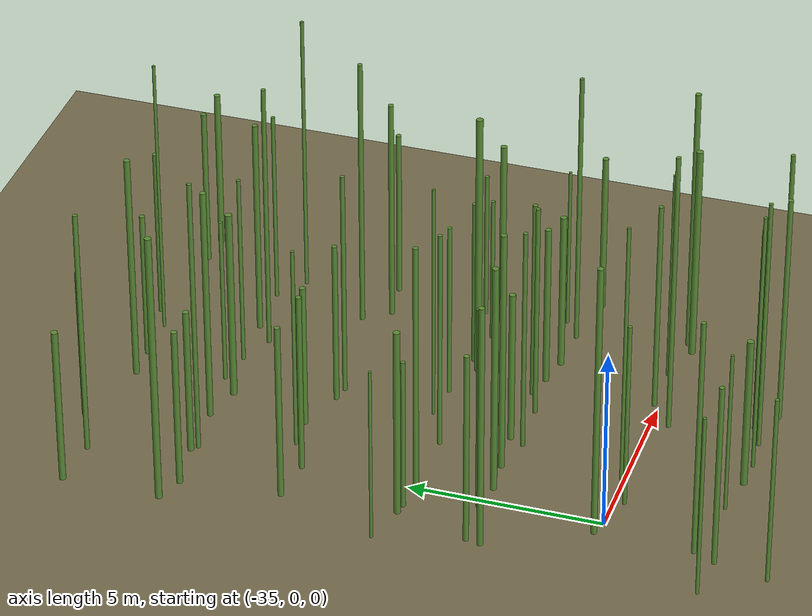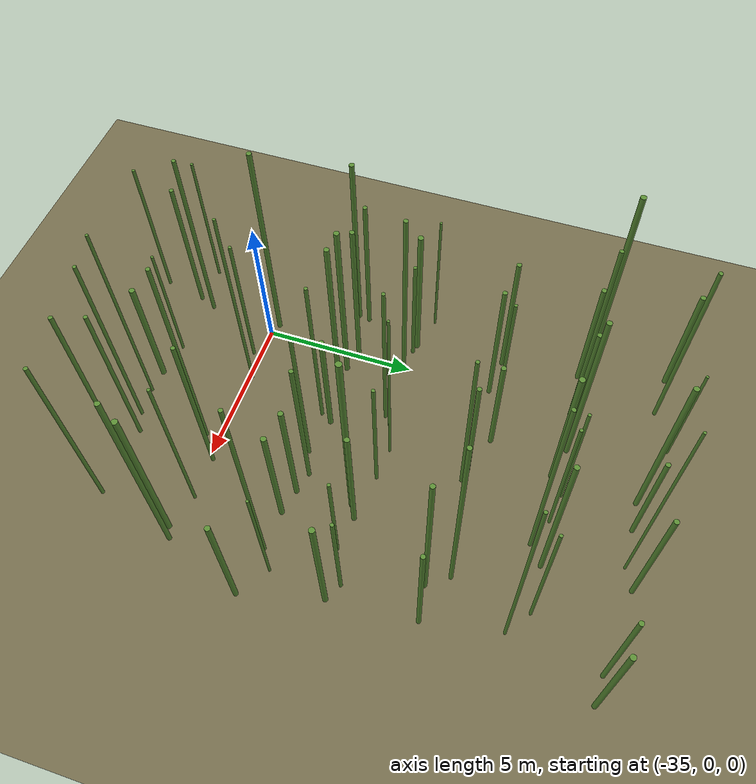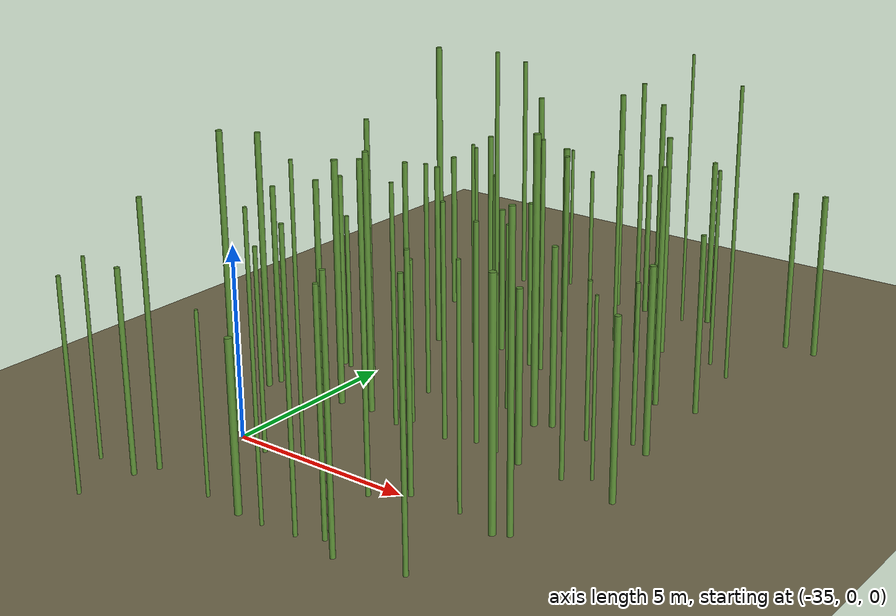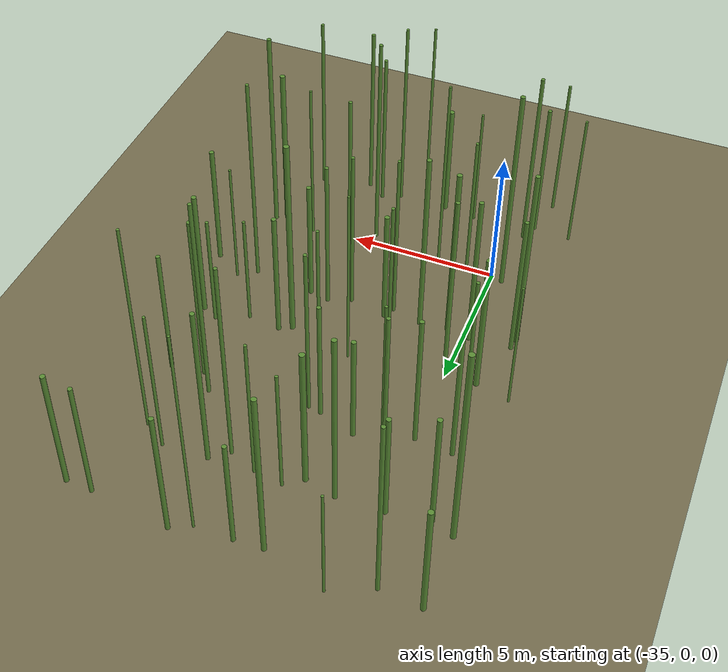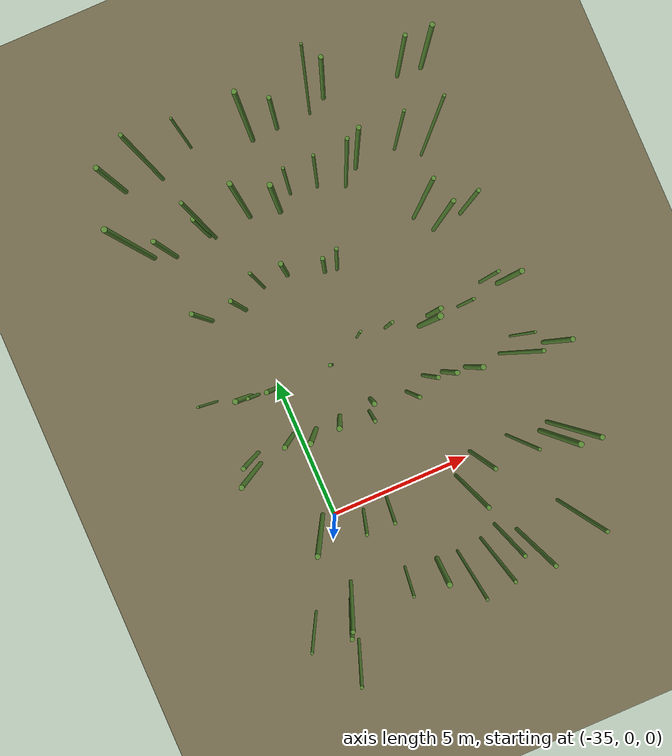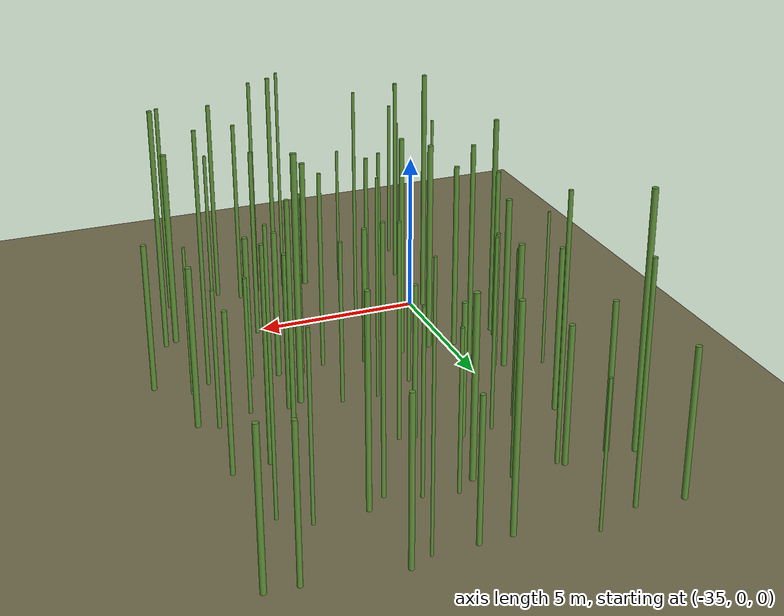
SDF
<sdf version="1.9">
 <world name="bamboo_field">
  <model name="ground_plane">
   <static>true</static>
   <link name="link">
    <collision name="collision">
     <geometry><plane><normal>0 0 1</normal><size>80.0 80.0</size></plane></geometry>
    </collision>
    <visual name="visual">
     <geometry><plane><normal>0 0 1</normal><size>80.0 80.0</size></plane></geometry>
     <material><diffuse>0.45 0.42 0.30 1</diffuse></material>
    </visual>
   </link>
  </model>
  <model name="bamboo_883">
   <static>true</static>
   <pose>-35.95236597711646 -4.328427685578118 2.654591894660126 0 0 0</pose>
   <link name="link">
    <collision name="collision">
     <geometry>
      <cylinder><radius>0.0523327088534204</radius><length>5.309183789320252</length></cylinder>
     </geometry>
    </collision>
    <visual name="visual">
     <geometry>
      <cylinder><radius>0.0523327088534204</radius><length>5.309183789320252</length></cylinder>
     </geometry>
     <material><diffuse>0.35 0.55 0.20 1</diffuse><specular>0.1 0.1 0.1 1</specular></material>
    </visual>
   </link>
  </model>
  <model name="bamboo_946">
   <static>true</static>
   <pose>-36.929727344100755 -2.853111574480171 2.567222885145929 0 0 0</pose>
   <link name="link">
    <collision name="collision">
     <geometry>
      <cylinder><radius>0.04578613034813892</radius><length>5.134445770291858</length></cylinder>
     </geometry>
    </collision>
    <visual name="visual">
     <geometry>
      <cylinder><radius>0.04578613034813892</radius><length>5.134445770291858</length></cylinder>
     </geometry>
     <material><diffuse>0.35 0.55 0.20 1</diffuse><specular>0.1 0.1 0.1 1</specular></material>
    </visual>
   </link>
  </model>
  <model name="bamboo_947">
   <static>true</static>
   <pose>-35.66077241423719 -2.9393669220687624 2.5811786500358926 0 0 0</pose>
   <link name="link">
    <collision name="collision">
     <geometry>
      <cylinder><radius>0.06769579455527745</radius><length>5.162357300071785</length></cylinder>
     </geometry>
    </collision>
    <visual name="visual">
     <geometry>
      <cylinder><radius>0.06769579455527745</radius><length>5.162357300071785</length></cylinder>
     </geometry>
     <material><diffuse>0.35 0.55 0.20 1</diffuse><specular>0.1 0.1 0.1 1</specular></material>
    </visual>
   </link>
  </model>
  <model name="bamboo_948">
   <static>true</static>
   <pose>-35.406176619952255 -2.372410084055757 3.358262216559669 0 0 0</pose>
   <link name="link">
    <collision name="collision">
     <geometry>
      <cylinder><radius>0.06378383984382524</radius><length>6.716524433119338</length></cylinder>
     </geometry>
    </collision>
    <visual name="visual">
     <geometry>
      <cylinder><radius>0.06378383984382524</radius><length>6.716524433119338</length></cylinder>
     </geometry>
     <material><diffuse>0.35 0.55 0.20 1</diffuse><specular>0.1 0.1 0.1 1</specular></material>
    </visual>
   </link>
  </model>
  <model name="bamboo_949">
   <static>true</static>
   <pose>-33.47936502725804 -2.6581263494034437 2.2867351233186044 0 0 0</pose>
   <link name="link">
    <collision name="collision">
     <geometry>
      <cylinder><radius>0.04425029550463626</radius><length>4.573470246637209</length></cylinder>
     </geometry>
    </collision>
    <visual name="visual">
     <geometry>
      <cylinder><radius>0.04425029550463626</radius><length>4.573470246637209</length></cylinder>
     </geometry>
     <material><diffuse>0.35 0.55 0.20 1</diffuse><specular>0.1 0.1 0.1 1</specular></material>
    </visual>
   </link>
  </model>
  <model name="bamboo_950">
   <static>true</static>
   <pose>-32.336467920182834 -2.8344742595998906 2.129420822318047 0 0 0</pose>
   <link name="link">
    <collision name="collision">
     <geometry>
      <cylinder><radius>0.08889266646233321</radius><length>4.258841644636094</length></cylinder>
     </geometry>
    </collision>
    <visual name="visual">
     <geometry>
      <cylinder><radius>0.08889266646233321</radius><length>4.258841644636094</length></cylinder>
     </geometry>
     <material><diffuse>0.35 0.55 0.20 1</diffuse><specular>0.1 0.1 0.1 1</specular></material>
    </visual>
   </link>
  </model>
  <model name="bamboo_951">
   <static>true</static>
   <pose>-31.573488483907262 -2.8765535794406536 3.6762182626829176 0 0 0</pose>
   <link name="link">
    <collision name="collision">
     <geometry>
      <cylinder><radius>0.04613810838493318</radius><length>7.352436525365835</length></cylinder>
     </geometry>
    </collision>
    <visual name="visual">
     <geometry>
      <cylinder><radius>0.04613810838493318</radius><length>7.352436525365835</length></cylinder>
     </geometry>
     <material><diffuse>0.35 0.55 0.20 1</diffuse><specular>0.1 0.1 0.1 1</specular></material>
    </visual>
   </link>
  </model>
  <model name="bamboo_952">
   <static>true</static>
   <pose>-30.645049486509915 -2.7913515417940604 3.5789854645875723 0 0 0</pose>
   <link name="link">
    <collision name="collision">
     <geometry>
      <cylinder><radius>0.0536486395285662</radius><length>7.1579709291751445</length></cylinder>
     </geometry>
    </collision>
    <visual name="visual">
     <geometry>
      <cylinder><radius>0.0536486395285662</radius><length>7.1579709291751445</length></cylinder>
     </geometry>
     <material><diffuse>0.35 0.55 0.20 1</diffuse><specular>0.1 0.1 0.1 1</specular></material>
    </visual>
   </link>
  </model>
  <model name="bamboo_953">
   <static>true</static>
   <pose>-30.010177354643886 -2.5339167231315347 2.9690657185228844 0 0 0</pose>
   <link name="link">
    <collision name="collision">
     <geometry>
      <cylinder><radius>0.06022217995953679</radius><length>5.938131437045769</length></cylinder>
     </geometry>
    </collision>
    <visual name="visual">
     <geometry>
      <cylinder><radius>0.06022217995953679</radius><length>5.938131437045769</length></cylinder>
     </geometry>
     <material><diffuse>0.35 0.55 0.20 1</diffuse><specular>0.1 0.1 0.1 1</specular></material>
    </visual>
   </link>
  </model>
  <model name="bamboo_954">
   <static>true</static>
   <pose>-29.36796026416743 -3.001794038874694 3.256742059326217 0 0 0</pose>
   <link name="link">
    <collision name="collision">
     <geometry>
      <cylinder><radius>0.06486368910626389</radius><length>6.513484118652434</length></cylinder>
     </geometry>
    </collision>
    <visual name="visual">
     <geometry>
      <cylinder><radius>0.06486368910626389</radius><length>6.513484118652434</length></cylinder>
     </geometry>
     <material><diffuse>0.35 0.55 0.20 1</diffuse><specular>0.1 0.1 0.1 1</specular></material>
    </visual>
   </link>
  </model>
  <model name="bamboo_955">
   <static>true</static>
   <pose>-27.66288653028672 -2.6361396789692426 3.358408724173246 0 0 0</pose>
   <link name="link">
    <collision name="collision">
     <geometry>
      <cylinder><radius>0.05913164913825092</radius><length>6.716817448346492</length></cylinder>
     </geometry>
    </collision>
    <visual name="visual">
     <geometry>
      <cylinder><radius>0.05913164913825092</radius><length>6.716817448346492</length></cylinder>
     </geometry>
     <material><diffuse>0.35 0.55 0.20 1</diffuse><specular>0.1 0.1 0.1 1</specular></material>
    </visual>
   </link>
  </model>
  <model name="bamboo_1015">
   <static>true</static>
   <pose>-35.385615456009575 0.1415430750576535 3.8524740849448147 0 0 0</pose>
   <link name="link">
    <collision name="collision">
     <geometry>
      <cylinder><radius>0.07739116838596471</radius><length>7.704948169889629</length></cylinder>
     </geometry>
    </collision>
    <visual name="visual">
     <geometry>
      <cylinder><radius>0.07739116838596471</radius><length>7.704948169889629</length></cylinder>
     </geometry>
     <material><diffuse>0.35 0.55 0.20 1</diffuse><specular>0.1 0.1 0.1 1</specular></material>
    </visual>
   </link>
  </model>
  <model name="bamboo_1016">
   <static>true</static>
   <pose>-34.01362041661084 -0.2514323511725014 2.626020631727209 0 0 0</pose>
   <link name="link">
    <collision name="collision">
     <geometry>
      <cylinder><radius>0.05318789702541108</radius><length>5.252041263454418</length></cylinder>
     </geometry>
    </collision>
    <visual name="visual">
     <geometry>
      <cylinder><radius>0.05318789702541108</radius><length>5.252041263454418</length></cylinder>
     </geometry>
     <material><diffuse>0.35 0.55 0.20 1</diffuse><specular>0.1 0.1 0.1 1</specular></material>
    </visual>
   </link>
  </model>
  <model name="bamboo_1017">
   <static>true</static>
   <pose>-33.080471022764165 0.08644173348034156 3.7060673225351097 0 0 0</pose>
   <link name="link">
    <collision name="collision">
     <geometry>
      <cylinder><radius>0.04756323730784457</radius><length>7.4121346450702195</length></cylinder>
     </geometry>
    </collision>
    <visual name="visual">
     <geometry>
      <cylinder><radius>0.04756323730784457</radius><length>7.4121346450702195</length></cylinder>
     </geometry>
     <material><diffuse>0.35 0.55 0.20 1</diffuse><specular>0.1 0.1 0.1 1</specular></material>
    </visual>
   </link>
  </model>
  <model name="bamboo_1018">
   <static>true</static>
   <pose>-30.574297539369876 -0.4437581988186833 3.990403486716378 0 0 0</pose>
   <link name="link">
    <collision name="collision">
     <geometry>
      <cylinder><radius>0.061821493326136484</radius><length>7.980806973432756</length></cylinder>
     </geometry>
    </collision>
    <visual name="visual">
     <geometry>
      <cylinder><radius>0.061821493326136484</radius><length>7.980806973432756</length></cylinder>
     </geometry>
     <material><diffuse>0.35 0.55 0.20 1</diffuse><specular>0.1 0.1 0.1 1</specular></material>
    </visual>
   </link>
  </model>
  <model name="bamboo_1019">
   <static>true</static>
   <pose>-29.788647086004097 0.13450311547337368 2.9859771000220015 0 0 0</pose>
   <link name="link">
    <collision name="collision">
     <geometry>
      <cylinder><radius>0.06425997572308767</radius><length>5.971954200044003</length></cylinder>
     </geometry>
    </collision>
    <visual name="visual">
     <geometry>
      <cylinder><radius>0.06425997572308767</radius><length>5.971954200044003</length></cylinder>
     </geometry>
     <material><diffuse>0.35 0.55 0.20 1</diffuse><specular>0.1 0.1 0.1 1</specular></material>
    </visual>
   </link>
  </model>
  <model name="bamboo_1020">
   <static>true</static>
   <pose>-28.393048906574872 0.1513137707733857 3.0174755278612935 0 0 0</pose>
   <link name="link">
    <collision name="collision">
     <geometry>
      <cylinder><radius>0.048414750080532074</radius><length>6.034951055722587</length></cylinder>
     </geometry>
    </collision>
    <visual name="visual">
     <geometry>
      <cylinder><radius>0.048414750080532074</radius><length>6.034951055722587</length></cylinder>
     </geometry>
     <material><diffuse>0.35 0.55 0.20 1</diffuse><specular>0.1 0.1 0.1 1</specular></material>
    </visual>
   </link>
  </model>
  <model name="bamboo_1021">
   <static>true</static>
   <pose>-27.25018056568712 -0.18081910082392766 3.052030813199991 0 0 0</pose>
   <link name="link">
    <collision name="collision">
     <geometry>
      <cylinder><radius>0.08858136773263131</radius><length>6.104061626399982</length></cylinder>
     </geometry>
    </collision>
    <visual name="visual">
     <geometry>
      <cylinder><radius>0.08858136773263131</radius><length>6.104061626399982</length></cylinder>
     </geometry>
     <material><diffuse>0.35 0.55 0.20 1</diffuse><specular>0.1 0.1 0.1 1</specular></material>
    </visual>
   </link>
  </model>
  <model name="bamboo_1022">
   <static>true</static>
   <pose>-26.900824330338974 0.0046062465835689514 3.7747353960373666 0 0 0</pose>
   <link name="link">
    <collision name="collision">
     <geometry>
      <cylinder><radius>0.07384542580481812</radius><length>7.549470792074733</length></cylinder>
     </geometry>
    </collision>
    <visual name="visual">
     <geometry>
      <cylinder><radius>0.07384542580481812</radius><length>7.549470792074733</length></cylinder>
     </geometry>
     <material><diffuse>0.35 0.55 0.20 1</diffuse><specular>0.1 0.1 0.1 1</specular></material>
    </visual>
   </link>
  </model>
  <model name="bamboo_1073">
   <static>true</static>
   <pose>-36.659131709831264 2.6435224533013812 3.453018492799191 0 0 0</pose>
   <link name="link">
    <collision name="collision">
     <geometry>
      <cylinder><radius>0.07870788935718763</radius><length>6.906036985598382</length></cylinder>
     </geometry>
    </collision>
    <visual name="visual">
     <geometry>
      <cylinder><radius>0.07870788935718763</radius><length>6.906036985598382</length></cylinder>
     </geometry>
     <material><diffuse>0.35 0.55 0.20 1</diffuse><specular>0.1 0.1 0.1 1</specular></material>
    </visual>
   </link>
  </model>
  <model name="bamboo_1074">
   <static>true</static>
   <pose>-36.592608693493716 3.0218868124905773 2.7089466918082987 0 0 0</pose>
   <link name="link">
    <collision name="collision">
     <geometry>
      <cylinder><radius>0.07134947661589808</radius><length>5.4178933836165974</length></cylinder>
     </geometry>
    </collision>
    <visual name="visual">
     <geometry>
      <cylinder><radius>0.07134947661589808</radius><length>5.4178933836165974</length></cylinder>
     </geometry>
     <material><diffuse>0.35 0.55 0.20 1</diffuse><specular>0.1 0.1 0.1 1</specular></material>
    </visual>
   </link>
  </model>
  <model name="bamboo_1075">
   <static>true</static>
   <pose>-35.188056388635964 3.1299844124074117 2.9062943211045904 0 0 0</pose>
   <link name="link">
    <collision name="collision">
     <geometry>
      <cylinder><radius>0.07684293478921556</radius><length>5.812588642209181</length></cylinder>
     </geometry>
    </collision>
    <visual name="visual">
     <geometry>
      <cylinder><radius>0.07684293478921556</radius><length>5.812588642209181</length></cylinder>
     </geometry>
     <material><diffuse>0.35 0.55 0.20 1</diffuse><specular>0.1 0.1 0.1 1</specular></material>
    </visual>
   </link>
  </model>
  <model name="bamboo_1076">
   <static>true</static>
   <pose>-34.407219691277206 2.983097359168483 3.255488703631171 0 0 0</pose>
   <link name="link">
    <collision name="collision">
     <geometry>
      <cylinder><radius>0.08471694489476808</radius><length>6.510977407262342</length></cylinder>
     </geometry>
    </collision>
    <visual name="visual">
     <geometry>
      <cylinder><radius>0.08471694489476808</radius><length>6.510977407262342</length></cylinder>
     </geometry>
     <material><diffuse>0.35 0.55 0.20 1</diffuse><specular>0.1 0.1 0.1 1</specular></material>
    </visual>
   </link>
  </model>
  <model name="bamboo_1077">
   <static>true</static>
   <pose>-33.46968323538881 3.06625880413557 3.429708936404671 0 0 0</pose>
   <link name="link">
    <collision name="collision">
     <geometry>
      <cylinder><radius>0.07923946314121755</radius><length>6.859417872809342</length></cylinder>
     </geometry>
    </collision>
    <visual name="visual">
     <geometry>
      <cylinder><radius>0.07923946314121755</radius><length>6.859417872809342</length></cylinder>
     </geometry>
     <material><diffuse>0.35 0.55 0.20 1</diffuse><specular>0.1 0.1 0.1 1</specular></material>
    </visual>
   </link>
  </model>
  <model name="bamboo_1078">
   <static>true</static>
   <pose>-32.456530331757406 2.8191003918999726 3.1647380917155035 0 0 0</pose>
   <link name="link">
    <collision name="collision">
     <geometry>
      <cylinder><radius>0.0563923481540575</radius><length>6.329476183431007</length></cylinder>
     </geometry>
    </collision>
    <visual name="visual">
     <geometry>
      <cylinder><radius>0.0563923481540575</radius><length>6.329476183431007</length></cylinder>
     </geometry>
     <material><diffuse>0.35 0.55 0.20 1</diffuse><specular>0.1 0.1 0.1 1</specular></material>
    </visual>
   </link>
  </model>
  <model name="bamboo_1079">
   <static>true</static>
   <pose>-32.249789534363956 3.188169626725849 2.1638943268693778 0 0 0</pose>
   <link name="link">
    <collision name="collision">
     <geometry>
      <cylinder><radius>0.08142188147159403</radius><length>4.3277886537387555</length></cylinder>
     </geometry>
    </collision>
    <visual name="visual">
     <geometry>
      <cylinder><radius>0.08142188147159403</radius><length>4.3277886537387555</length></cylinder>
     </geometry>
     <material><diffuse>0.35 0.55 0.20 1</diffuse><specular>0.1 0.1 0.1 1</specular></material>
    </visual>
   </link>
  </model>
  <model name="bamboo_1080">
   <static>true</static>
   <pose>-30.99105625600172 2.9294746185234524 3.0525112063102977 0 0 0</pose>
   <link name="link">
    <collision name="collision">
     <geometry>
      <cylinder><radius>0.05846471081555726</radius><length>6.105022412620595</length></cylinder>
     </geometry>
    </collision>
    <visual name="visual">
     <geometry>
      <cylinder><radius>0.05846471081555726</radius><length>6.105022412620595</length></cylinder>
     </geometry>
     <material><diffuse>0.35 0.55 0.20 1</diffuse><specular>0.1 0.1 0.1 1</specular></material>
    </visual>
   </link>
  </model>
  <model name="bamboo_1081">
   <static>true</static>
   <pose>-30.236854918009765 3.2179380442960652 2.8468443899826967 0 0 0</pose>
   <link name="link">
    <collision name="collision">
     <geometry>
      <cylinder><radius>0.06494136528538955</radius><length>5.6936887799653935</length></cylinder>
     </geometry>
    </collision>
    <visual name="visual">
     <geometry>
      <cylinder><radius>0.06494136528538955</radius><length>5.6936887799653935</length></cylinder>
     </geometry>
     <material><diffuse>0.35 0.55 0.20 1</diffuse><specular>0.1 0.1 0.1 1</specular></material>
    </visual>
   </link>
  </model>
  <model name="bamboo_1082">
   <static>true</static>
   <pose>-29.560107675278093 3.064018516295449 2.288692362692742 0 0 0</pose>
   <link name="link">
    <collision name="collision">
     <geometry>
      <cylinder><radius>0.08119059151516958</radius><length>4.577384725385484</length></cylinder>
     </geometry>
    </collision>
    <visual name="visual">
     <geometry>
      <cylinder><radius>0.08119059151516958</radius><length>4.577384725385484</length></cylinder>
     </geometry>
     <material><diffuse>0.35 0.55 0.20 1</diffuse><specular>0.1 0.1 0.1 1</specular></material>
    </visual>
   </link>
  </model>
  <model name="bamboo_1083">
   <static>true</static>
   <pose>-28.748490607325042 2.8975620121473993 2.2361163153420494 0 0 0</pose>
   <link name="link">
    <collision name="collision">
     <geometry>
      <cylinder><radius>0.08316358287972997</radius><length>4.472232630684099</length></cylinder>
     </geometry>
    </collision>
    <visual name="visual">
     <geometry>
      <cylinder><radius>0.08316358287972997</radius><length>4.472232630684099</length></cylinder>
     </geometry>
     <material><diffuse>0.35 0.55 0.20 1</diffuse><specular>0.1 0.1 0.1 1</specular></material>
    </visual>
   </link>
  </model>
  <model name="bamboo_1084">
   <static>true</static>
   <pose>-27.47762171256506 2.852247020333577 3.9036435055548857 0 0 0</pose>
   <link name="link">
    <collision name="collision">
     <geometry>
      <cylinder><radius>0.058466602981722855</radius><length>7.807287011109771</length></cylinder>
     </geometry>
    </collision>
    <visual name="visual">
     <geometry>
      <cylinder><radius>0.058466602981722855</radius><length>7.807287011109771</length></cylinder>
     </geometry>
     <material><diffuse>0.35 0.55 0.20 1</diffuse><specular>0.1 0.1 0.1 1</specular></material>
    </visual>
   </link>
  </model>
  <model name="bamboo_1085">
   <static>true</static>
   <pose>-26.89036814301679 3.259927189713933 2.3066090213916035 0 0 0</pose>
   <link name="link">
    <collision name="collision">
     <geometry>
      <cylinder><radius>0.04201410707934853</radius><length>4.613218042783207</length></cylinder>
     </geometry>
    </collision>
    <visual name="visual">
     <geometry>
      <cylinder><radius>0.04201410707934853</radius><length>4.613218042783207</length></cylinder>
     </geometry>
     <material><diffuse>0.35 0.55 0.20 1</diffuse><specular>0.1 0.1 0.1 1</specular></material>
    </visual>
   </link>
  </model>
  <model name="bamboo_1086">
   <static>true</static>
   <pose>-25.91635428696809 2.6002688515371206 2.284279611465223 0 0 0</pose>
   <link name="link">
    <collision name="collision">
     <geometry>
      <cylinder><radius>0.0795601850535234</radius><length>4.568559222930446</length></cylinder>
     </geometry>
    </collision>
    <visual name="visual">
     <geometry>
      <cylinder><radius>0.0795601850535234</radius><length>4.568559222930446</length></cylinder>
     </geometry>
     <material><diffuse>0.35 0.55 0.20 1</diffuse><specular>0.1 0.1 0.1 1</specular></material>
    </visual>
   </link>
  </model>
  <model name="bamboo_1143">
   <static>true</static>
   <pose>-37.188808192859774 5.236222801894116 2.4460501774135315 0 0 0</pose>
   <link name="link">
    <collision name="collision">
     <geometry>
      <cylinder><radius>0.04018485361291731</radius><length>4.892100354827063</length></cylinder>
     </geometry>
    </collision>
    <visual name="visual">
     <geometry>
      <cylinder><radius>0.04018485361291731</radius><length>4.892100354827063</length></cylinder>
     </geometry>
     <material><diffuse>0.35 0.55 0.20 1</diffuse><specular>0.1 0.1 0.1 1</specular></material>
    </visual>
   </link>
  </model>
  <model name="bamboo_1144">
   <static>true</static>
   <pose>-36.036335412744904 4.943200241797001 2.663030219186415 0 0 0</pose>
   <link name="link">
    <collision name="collision">
     <geometry>
      <cylinder><radius>0.08762941144952649</radius><length>5.32606043837283</length></cylinder>
     </geometry>
    </collision>
    <visual name="visual">
     <geometry>
      <cylinder><radius>0.08762941144952649</radius><length>5.32606043837283</length></cylinder>
     </geometry>
     <material><diffuse>0.35 0.55 0.20 1</diffuse><specular>0.1 0.1 0.1 1</specular></material>
    </visual>
   </link>
  </model>
  <model name="bamboo_1145">
   <static>true</static>
   <pose>-35.759682267077146 4.880111294407448 2.147462313739757 0 0 0</pose>
   <link name="link">
    <collision name="collision">
     <geometry>
      <cylinder><radius>0.05814085729788694</radius><length>4.294924627479514</length></cylinder>
     </geometry>
    </collision>
    <visual name="visual">
     <geometry>
      <cylinder><radius>0.05814085729788694</radius><length>4.294924627479514</length></cylinder>
     </geometry>
     <material><diffuse>0.35 0.55 0.20 1</diffuse><specular>0.1 0.1 0.1 1</specular></material>
    </visual>
   </link>
  </model>
  <model name="bamboo_1146">
   <static>true</static>
   <pose>-34.933730714905174 4.8202586908803235 3.531065469382841 0 0 0</pose>
   <link name="link">
    <collision name="collision">
     <geometry>
      <cylinder><radius>0.06928431962158857</radius><length>7.062130938765682</length></cylinder>
     </geometry>
    </collision>
    <visual name="visual">
     <geometry>
      <cylinder><radius>0.06928431962158857</radius><length>7.062130938765682</length></cylinder>
     </geometry>
     <material><diffuse>0.35 0.55 0.20 1</diffuse><specular>0.1 0.1 0.1 1</specular></material>
    </visual>
   </link>
  </model>
  <model name="bamboo_1147">
   <static>true</static>
   <pose>-33.00620220188404 4.814523209229704 3.1090099103147426 0 0 0</pose>
   <link name="link">
    <collision name="collision">
     <geometry>
      <cylinder><radius>0.05699087465090088</radius><length>6.218019820629485</length></cylinder>
     </geometry>
    </collision>
    <visual name="visual">
     <geometry>
      <cylinder><radius>0.05699087465090088</radius><length>6.218019820629485</length></cylinder>
     </geometry>
     <material><diffuse>0.35 0.55 0.20 1</diffuse><specular>0.1 0.1 0.1 1</specular></material>
    </visual>
   </link>
  </model>
  <model name="bamboo_1148">
   <static>true</static>
   <pose>-31.828782704618128 5.350668645965557 3.3549047579950617 0 0 0</pose>
   <link name="link">
    <collision name="collision">
     <geometry>
      <cylinder><radius>0.0410496880231223</radius><length>6.709809515990123</length></cylinder>
     </geometry>
    </collision>
    <visual name="visual">
     <geometry>
      <cylinder><radius>0.0410496880231223</radius><length>6.709809515990123</length></cylinder>
     </geometry>
     <material><diffuse>0.35 0.55 0.20 1</diffuse><specular>0.1 0.1 0.1 1</specular></material>
    </visual>
   </link>
  </model>
  <model name="bamboo_1149">
   <static>true</static>
   <pose>-30.782999592139944 5.262114890238473 2.480299865747104 0 0 0</pose>
   <link name="link">
    <collision name="collision">
     <geometry>
      <cylinder><radius>0.055253618902043874</radius><length>4.960599731494208</length></cylinder>
     </geometry>
    </collision>
    <visual name="visual">
     <geometry>
      <cylinder><radius>0.055253618902043874</radius><length>4.960599731494208</length></cylinder>
     </geometry>
     <material><diffuse>0.35 0.55 0.20 1</diffuse><specular>0.1 0.1 0.1 1</specular></material>
    </visual>
   </link>
  </model>
  <model name="bamboo_1150">
   <static>true</static>
   <pose>-29.65830484356109 4.845243053181251 3.763327590133519 0 0 0</pose>
   <link name="link">
    <collision name="collision">
     <geometry>
      <cylinder><radius>0.08988474571079155</radius><length>7.526655180267038</length></cylinder>
     </geometry>
    </collision>
    <visual name="visual">
     <geometry>
      <cylinder><radius>0.08988474571079155</radius><length>7.526655180267038</length></cylinder>
     </geometry>
     <material><diffuse>0.35 0.55 0.20 1</diffuse><specular>0.1 0.1 0.1 1</specular></material>
    </visual>
   </link>
  </model>
  <model name="bamboo_1151">
   <static>true</static>
   <pose>-29.250666560178157 5.061457500944968 2.383362584301154 0 0 0</pose>
   <link name="link">
    <collision name="collision">
     <geometry>
      <cylinder><radius>0.07974490582557064</radius><length>4.766725168602308</length></cylinder>
     </geometry>
    </collision>
    <visual name="visual">
     <geometry>
      <cylinder><radius>0.07974490582557064</radius><length>4.766725168602308</length></cylinder>
     </geometry>
     <material><diffuse>0.35 0.55 0.20 1</diffuse><specular>0.1 0.1 0.1 1</specular></material>
    </visual>
   </link>
  </model>
  <model name="bamboo_1152">
   <static>true</static>
   <pose>-28.144364160267944 4.931850304610507 2.0923903847200034 0 0 0</pose>
   <link name="link">
    <collision name="collision">
     <geometry>
      <cylinder><radius>0.05222748194672674</radius><length>4.184780769440007</length></cylinder>
     </geometry>
    </collision>
    <visual name="visual">
     <geometry>
      <cylinder><radius>0.05222748194672674</radius><length>4.184780769440007</length></cylinder>
     </geometry>
     <material><diffuse>0.35 0.55 0.20 1</diffuse><specular>0.1 0.1 0.1 1</specular></material>
    </visual>
   </link>
  </model>
  <model name="bamboo_1153">
   <static>true</static>
   <pose>-27.104468084821068 5.410474833930629 2.106517950139331 0 0 0</pose>
   <link name="link">
    <collision name="collision">
     <geometry>
      <cylinder><radius>0.0563840302255644</radius><length>4.213035900278662</length></cylinder>
     </geometry>
    </collision>
    <visual name="visual">
     <geometry>
      <cylinder><radius>0.0563840302255644</radius><length>4.213035900278662</length></cylinder>
     </geometry>
     <material><diffuse>0.35 0.55 0.20 1</diffuse><specular>0.1 0.1 0.1 1</specular></material>
    </visual>
   </link>
  </model>
  <model name="bamboo_1154">
   <static>true</static>
   <pose>-26.56380998221541 5.1289458951095 2.4184751469984436 0 0 0</pose>
   <link name="link">
    <collision name="collision">
     <geometry>
      <cylinder><radius>0.08429171438850114</radius><length>4.836950293996887</length></cylinder>
     </geometry>
    </collision>
    <visual name="visual">
     <geometry>
      <cylinder><radius>0.08429171438850114</radius><length>4.836950293996887</length></cylinder>
     </geometry>
     <material><diffuse>0.35 0.55 0.20 1</diffuse><specular>0.1 0.1 0.1 1</specular></material>
    </visual>
   </link>
  </model>
  <model name="bamboo_1214">
   <static>true</static>
   <pose>-36.236499504663605 7.888139387717954 2.48984991645838 0 0 0</pose>
   <link name="link">
    <collision name="collision">
     <geometry>
      <cylinder><radius>0.07608368828800927</radius><length>4.97969983291676</length></cylinder>
     </geometry>
    </collision>
    <visual name="visual">
     <geometry>
      <cylinder><radius>0.07608368828800927</radius><length>4.97969983291676</length></cylinder>
     </geometry>
     <material><diffuse>0.35 0.55 0.20 1</diffuse><specular>0.1 0.1 0.1 1</specular></material>
    </visual>
   </link>
  </model>
  <model name="bamboo_1215">
   <static>true</static>
   <pose>-34.99896095429198 7.7698719666924605 2.5437215695146547 0 0 0</pose>
   <link name="link">
    <collision name="collision">
     <geometry>
      <cylinder><radius>0.07178018860571123</radius><length>5.087443139029309</length></cylinder>
     </geometry>
    </collision>
    <visual name="visual">
     <geometry>
      <cylinder><radius>0.07178018860571123</radius><length>5.087443139029309</length></cylinder>
     </geometry>
     <material><diffuse>0.35 0.55 0.20 1</diffuse><specular>0.1 0.1 0.1 1</specular></material>
    </visual>
   </link>
  </model>
  <model name="bamboo_1216">
   <static>true</static>
   <pose>-34.103136333914044 8.228310459539635 2.8827521416946835 0 0 0</pose>
   <link name="link">
    <collision name="collision">
     <geometry>
      <cylinder><radius>0.048388301905510384</radius><length>5.765504283389367</length></cylinder>
     </geometry>
    </collision>
    <visual name="visual">
     <geometry>
      <cylinder><radius>0.048388301905510384</radius><length>5.765504283389367</length></cylinder>
     </geometry>
     <material><diffuse>0.35 0.55 0.20 1</diffuse><specular>0.1 0.1 0.1 1</specular></material>
    </visual>
   </link>
  </model>
  <model name="bamboo_1217">
   <static>true</static>
   <pose>-33.185717817971394 8.311690333581772 2.0396221542645883 0 0 0</pose>
   <link name="link">
    <collision name="collision">
     <geometry>
      <cylinder><radius>0.07967793005779412</radius><length>4.0792443085291765</length></cylinder>
     </geometry>
    </collision>
    <visual name="visual">
     <geometry>
      <cylinder><radius>0.07967793005779412</radius><length>4.0792443085291765</length></cylinder>
     </geometry>
     <material><diffuse>0.35 0.55 0.20 1</diffuse><specular>0.1 0.1 0.1 1</specular></material>
    </visual>
   </link>
  </model>
  <model name="bamboo_1218">
   <static>true</static>
   <pose>-31.94051424258086 7.893964991874692 2.3055974178441185 0 0 0</pose>
   <link name="link">
    <collision name="collision">
     <geometry>
      <cylinder><radius>0.06975916807994159</radius><length>4.611194835688237</length></cylinder>
     </geometry>
    </collision>
    <visual name="visual">
     <geometry>
      <cylinder><radius>0.06975916807994159</radius><length>4.611194835688237</length></cylinder>
     </geometry>
     <material><diffuse>0.35 0.55 0.20 1</diffuse><specular>0.1 0.1 0.1 1</specular></material>
    </visual>
   </link>
  </model>
  <model name="bamboo_1219">
   <static>true</static>
   <pose>-31.51334975852244 7.809520230852431 3.2120507133132863 0 0 0</pose>
   <link name="link">
    <collision name="collision">
     <geometry>
      <cylinder><radius>0.058757344246708636</radius><length>6.424101426626573</length></cylinder>
     </geometry>
    </collision>
    <visual name="visual">
     <geometry>
      <cylinder><radius>0.058757344246708636</radius><length>6.424101426626573</length></cylinder>
     </geometry>
     <material><diffuse>0.35 0.55 0.20 1</diffuse><specular>0.1 0.1 0.1 1</specular></material>
    </visual>
   </link>
  </model>
  <model name="bamboo_1220">
   <static>true</static>
   <pose>-28.341674381815896 8.393205632077011 3.8513821425411128 0 0 0</pose>
   <link name="link">
    <collision name="collision">
     <geometry>
      <cylinder><radius>0.06457268588414611</radius><length>7.7027642850822255</length></cylinder>
     </geometry>
    </collision>
    <visual name="visual">
     <geometry>
      <cylinder><radius>0.06457268588414611</radius><length>7.7027642850822255</length></cylinder>
     </geometry>
     <material><diffuse>0.35 0.55 0.20 1</diffuse><specular>0.1 0.1 0.1 1</specular></material>
    </visual>
   </link>
  </model>
  <model name="bamboo_1221">
   <static>true</static>
   <pose>-27.86446460296418 7.7410396147472795 3.176618010867154 0 0 0</pose>
   <link name="link">
    <collision name="collision">
     <geometry>
      <cylinder><radius>0.07205243609380799</radius><length>6.353236021734308</length></cylinder>
     </geometry>
    </collision>
    <visual name="visual">
     <geometry>
      <cylinder><radius>0.07205243609380799</radius><length>6.353236021734308</length></cylinder>
     </geometry>
     <material><diffuse>0.35 0.55 0.20 1</diffuse><specular>0.1 0.1 0.1 1</specular></material>
    </visual>
   </link>
  </model>
  <model name="bamboo_1222">
   <static>true</static>
   <pose>-26.77656605128955 7.892541678209109 2.388456400676829 0 0 0</pose>
   <link name="link">
    <collision name="collision">
     <geometry>
      <cylinder><radius>0.06828042960254936</radius><length>4.776912801353658</length></cylinder>
     </geometry>
    </collision>
    <visual name="visual">
     <geometry>
      <cylinder><radius>0.06828042960254936</radius><length>4.776912801353658</length></cylinder>
     </geometry>
     <material><diffuse>0.35 0.55 0.20 1</diffuse><specular>0.1 0.1 0.1 1</specular></material>
    </visual>
   </link>
  </model>
  <model name="bamboo_1278">
   <static>true</static>
   <pose>-37.223535078738614 10.717496586808437 3.7952045964796257 0 0 0</pose>
   <link name="link">
    <collision name="collision">
     <geometry>
      <cylinder><radius>0.08828405218518613</radius><length>7.590409192959251</length></cylinder>
     </geometry>
    </collision>
    <visual name="visual">
     <geometry>
      <cylinder><radius>0.08828405218518613</radius><length>7.590409192959251</length></cylinder>
     </geometry>
     <material><diffuse>0.35 0.55 0.20 1</diffuse><specular>0.1 0.1 0.1 1</specular></material>
    </visual>
   </link>
  </model>
  <model name="bamboo_1279">
   <static>true</static>
   <pose>-36.487853784079206 10.44248569234744 2.2460906064382664 0 0 0</pose>
   <link name="link">
    <collision name="collision">
     <geometry>
      <cylinder><radius>0.08002564859177771</radius><length>4.492181212876533</length></cylinder>
     </geometry>
    </collision>
    <visual name="visual">
     <geometry>
      <cylinder><radius>0.08002564859177771</radius><length>4.492181212876533</length></cylinder>
     </geometry>
     <material><diffuse>0.35 0.55 0.20 1</diffuse><specular>0.1 0.1 0.1 1</specular></material>
    </visual>
   </link>
  </model>
  <model name="bamboo_1280">
   <static>true</static>
   <pose>-35.127590968276856 10.652428579714421 2.070010559031521 0 0 0</pose>
   <link name="link">
    <collision name="collision">
     <geometry>
      <cylinder><radius>0.0825725053075957</radius><length>4.140021118063042</length></cylinder>
     </geometry>
    </collision>
    <visual name="visual">
     <geometry>
      <cylinder><radius>0.0825725053075957</radius><length>4.140021118063042</length></cylinder>
     </geometry>
     <material><diffuse>0.35 0.55 0.20 1</diffuse><specular>0.1 0.1 0.1 1</specular></material>
    </visual>
   </link>
  </model>
  <model name="bamboo_1281">
   <static>true</static>
   <pose>-34.96805712135431 10.508544746598961 3.890456969412556 0 0 0</pose>
   <link name="link">
    <collision name="collision">
     <geometry>
      <cylinder><radius>0.06115256636481847</radius><length>7.780913938825112</length></cylinder>
     </geometry>
    </collision>
    <visual name="visual">
     <geometry>
      <cylinder><radius>0.06115256636481847</radius><length>7.780913938825112</length></cylinder>
     </geometry>
     <material><diffuse>0.35 0.55 0.20 1</diffuse><specular>0.1 0.1 0.1 1</specular></material>
    </visual>
   </link>
  </model>
  <model name="bamboo_1282">
   <static>true</static>
   <pose>-33.578186968714114 10.702074790640488 3.3183151563123223 0 0 0</pose>
   <link name="link">
    <collision name="collision">
     <geometry>
      <cylinder><radius>0.07914009120069326</radius><length>6.636630312624645</length></cylinder>
     </geometry>
    </collision>
    <visual name="visual">
     <geometry>
      <cylinder><radius>0.07914009120069326</radius><length>6.636630312624645</length></cylinder>
     </geometry>
     <material><diffuse>0.35 0.55 0.20 1</diffuse><specular>0.1 0.1 0.1 1</specular></material>
    </visual>
   </link>
  </model>
  <model name="bamboo_1283">
   <static>true</static>
   <pose>-32.53484393146132 10.445012416124964 2.704234251471939 0 0 0</pose>
   <link name="link">
    <collision name="collision">
     <geometry>
      <cylinder><radius>0.08930097609639062</radius><length>5.408468502943878</length></cylinder>
     </geometry>
    </collision>
    <visual name="visual">
     <geometry>
      <cylinder><radius>0.08930097609639062</radius><length>5.408468502943878</length></cylinder>
     </geometry>
     <material><diffuse>0.35 0.55 0.20 1</diffuse><specular>0.1 0.1 0.1 1</specular></material>
    </visual>
   </link>
  </model>
  <model name="bamboo_1284">
   <static>true</static>
   <pose>-31.962190458986406 10.880964225479818 2.3761473021159665 0 0 0</pose>
   <link name="link">
    <collision name="collision">
     <geometry>
      <cylinder><radius>0.051855017780040924</radius><length>4.752294604231933</length></cylinder>
     </geometry>
    </collision>
    <visual name="visual">
     <geometry>
      <cylinder><radius>0.051855017780040924</radius><length>4.752294604231933</length></cylinder>
     </geometry>
     <material><diffuse>0.35 0.55 0.20 1</diffuse><specular>0.1 0.1 0.1 1</specular></material>
    </visual>
   </link>
  </model>
  <model name="bamboo_1285">
   <static>true</static>
   <pose>-30.999073268053202 10.733743682041336 2.718130324444111 0 0 0</pose>
   <link name="link">
    <collision name="collision">
     <geometry>
      <cylinder><radius>0.050801998373785295</radius><length>5.436260648888222</length></cylinder>
     </geometry>
    </collision>
    <visual name="visual">
     <geometry>
      <cylinder><radius>0.050801998373785295</radius><length>5.436260648888222</length></cylinder>
     </geometry>
     <material><diffuse>0.35 0.55 0.20 1</diffuse><specular>0.1 0.1 0.1 1</specular></material>
    </visual>
   </link>
  </model>
  <model name="bamboo_1286">
   <static>true</static>
   <pose>-30.079232321790023 10.356402615486461 3.807319867064347 0 0 0</pose>
   <link name="link">
    <collision name="collision">
     <geometry>
      <cylinder><radius>0.05908911565310096</radius><length>7.614639734128694</length></cylinder>
     </geometry>
    </collision>
    <visual name="visual">
     <geometry>
      <cylinder><radius>0.05908911565310096</radius><length>7.614639734128694</length></cylinder>
     </geometry>
     <material><diffuse>0.35 0.55 0.20 1</diffuse><specular>0.1 0.1 0.1 1</specular></material>
    </visual>
   </link>
  </model>
  <model name="bamboo_1287">
   <static>true</static>
   <pose>-29.508211495151826 10.810997191303311 3.0718086392248107 0 0 0</pose>
   <link name="link">
    <collision name="collision">
     <geometry>
      <cylinder><radius>0.0747257685449883</radius><length>6.1436172784496215</length></cylinder>
     </geometry>
    </collision>
    <visual name="visual">
     <geometry>
      <cylinder><radius>0.0747257685449883</radius><length>6.1436172784496215</length></cylinder>
     </geometry>
     <material><diffuse>0.35 0.55 0.20 1</diffuse><specular>0.1 0.1 0.1 1</specular></material>
    </visual>
   </link>
  </model>
  <model name="bamboo_1288">
   <static>true</static>
   <pose>-27.999335782652878 10.872480507944012 2.7442845190114102 0 0 0</pose>
   <link name="link">
    <collision name="collision">
     <geometry>
      <cylinder><radius>0.04963137101920134</radius><length>5.4885690380228205</length></cylinder>
     </geometry>
    </collision>
    <visual name="visual">
     <geometry>
      <cylinder><radius>0.04963137101920134</radius><length>5.4885690380228205</length></cylinder>
     </geometry>
     <material><diffuse>0.35 0.55 0.20 1</diffuse><specular>0.1 0.1 0.1 1</specular></material>
    </visual>
   </link>
  </model>
  <model name="bamboo_1289">
   <static>true</static>
   <pose>-27.21394155084591 10.316261666397336 3.9848979828921562 0 0 0</pose>
   <link name="link">
    <collision name="collision">
     <geometry>
      <cylinder><radius>0.04767457049949479</radius><length>7.9697959657843125</length></cylinder>
     </geometry>
    </collision>
    <visual name="visual">
     <geometry>
      <cylinder><radius>0.04767457049949479</radius><length>7.9697959657843125</length></cylinder>
     </geometry>
     <material><diffuse>0.35 0.55 0.20 1</diffuse><specular>0.1 0.1 0.1 1</specular></material>
    </visual>
   </link>
  </model>
  <model name="bamboo_1349">
   <static>true</static>
   <pose>-37.22294051929136 13.248435699907347 2.187382124304193 0 0 0</pose>
   <link name="link">
    <collision name="collision">
     <geometry>
      <cylinder><radius>0.08510840716921049</radius><length>4.374764248608386</length></cylinder>
     </geometry>
    </collision>
    <visual name="visual">
     <geometry>
      <cylinder><radius>0.08510840716921049</radius><length>4.374764248608386</length></cylinder>
     </geometry>
     <material><diffuse>0.35 0.55 0.20 1</diffuse><specular>0.1 0.1 0.1 1</specular></material>
    </visual>
   </link>
  </model>
  <model name="bamboo_1350">
   <static>true</static>
   <pose>-35.85176414126251 13.133649196787532 3.458959984487394 0 0 0</pose>
   <link name="link">
    <collision name="collision">
     <geometry>
      <cylinder><radius>0.06452591916298682</radius><length>6.917919968974788</length></cylinder>
     </geometry>
    </collision>
    <visual name="visual">
     <geometry>
      <cylinder><radius>0.06452591916298682</radius><length>6.917919968974788</length></cylinder>
     </geometry>
     <material><diffuse>0.35 0.55 0.20 1</diffuse><specular>0.1 0.1 0.1 1</specular></material>
    </visual>
   </link>
  </model>
  <model name="bamboo_1351">
   <static>true</static>
   <pose>-34.510535053774646 13.755307822498072 2.1440973792433 0 0 0</pose>
   <link name="link">
    <collision name="collision">
     <geometry><cylinder><radius>0.04347270598393766</radius><length>4.2881947584866</length></cylinder></geometry>
    </collision>
    <visual name="visual">
     <geometry><cylinder><radius>0.04347270598393766</radius><length>4.2881947584866</length></cylinder></geometry>
     <material><diffuse>0.35 0.55 0.20 1</diffuse><specular>0.1 0.1 0.1 1</specular></material>
    </visual>
   </link>
  </model>
  <model name="bamboo_1352">
   <static>true</static>
   <pose>-32.41883454111066 13.133417224897148 3.2065870329697423 0 0 0</pose>
   <link name="link">
    <collision name="collision">
     <geometry>
      <cylinder><radius>0.08039963633261193</radius><length>6.413174065939485</length></cylinder>
     </geometry>
    </collision>
    <visual name="visual">
     <geometry>
      <cylinder><radius>0.08039963633261193</radius><length>6.413174065939485</length></cylinder>
     </geometry>
     <material><diffuse>0.35 0.55 0.20 1</diffuse><specular>0.1 0.1 0.1 1</specular></material>
    </visual>
   </link>
  </model>
  <model name="bamboo_1353">
   <static>true</static>
   <pose>-31.478882171512293 13.177432966322414 2.087480085077569 0 0 0</pose>
   <link name="link">
    <collision name="collision">
     <geometry>
      <cylinder><radius>0.07222410564671372</radius><length>4.174960170155138</length></cylinder>
     </geometry>
    </collision>
    <visual name="visual">
     <geometry>
      <cylinder><radius>0.07222410564671372</radius><length>4.174960170155138</length></cylinder>
     </geometry>
     <material><diffuse>0.35 0.55 0.20 1</diffuse><specular>0.1 0.1 0.1 1</specular></material>
    </visual>
   </link>
  </model>
  <model name="bamboo_1354">
   <static>true</static>
   <pose>-30.225335606556886 13.193353345277863 3.932721525570693 0 0 0</pose>
   <link name="link">
    <collision name="collision">
     <geometry>
      <cylinder><radius>0.04067484520092622</radius><length>7.865443051141386</length></cylinder>
     </geometry>
    </collision>
    <visual name="visual">
     <geometry>
      <cylinder><radius>0.04067484520092622</radius><length>7.865443051141386</length></cylinder>
     </geometry>
     <material><diffuse>0.35 0.55 0.20 1</diffuse><specular>0.1 0.1 0.1 1</specular></material>
    </visual>
   </link>
  </model>
  <model name="bamboo_1355">
   <static>true</static>
   <pose>-29.56491758484138 13.512911948184733 2.404643284368963 0 0 0</pose>
   <link name="link">
    <collision name="collision">
     <geometry>
      <cylinder><radius>0.0753727877456565</radius><length>4.809286568737926</length></cylinder>
     </geometry>
    </collision>
    <visual name="visual">
     <geometry>
      <cylinder><radius>0.0753727877456565</radius><length>4.809286568737926</length></cylinder>
     </geometry>
     <material><diffuse>0.35 0.55 0.20 1</diffuse><specular>0.1 0.1 0.1 1</specular></material>
    </visual>
   </link>
  </model>
  <model name="bamboo_1356">
   <static>true</static>
   <pose>-26.890984745398903 13.190886802270896 2.2461510303796515 0 0 0</pose>
   <link name="link">
    <collision name="collision">
     <geometry>
      <cylinder><radius>0.07137429265067462</radius><length>4.492302060759303</length></cylinder>
     </geometry>
    </collision>
    <visual name="visual">
     <geometry>
      <cylinder><radius>0.07137429265067462</radius><length>4.492302060759303</length></cylinder>
     </geometry>
     <material><diffuse>0.35 0.55 0.20 1</diffuse><specular>0.1 0.1 0.1 1</specular></material>
    </visual>
   </link>
  </model>
  <model name="bamboo_1357">
   <static>true</static>
   <pose>-26.011219906383914 13.135716692979694 2.2836700529040455 0 0 0</pose>
   <link name="link">
    <collision name="collision">
     <geometry>
      <cylinder><radius>0.08182416923913532</radius><length>4.567340105808091</length></cylinder>
     </geometry>
    </collision>
    <visual name="visual">
     <geometry>
      <cylinder><radius>0.08182416923913532</radius><length>4.567340105808091</length></cylinder>
     </geometry>
     <material><diffuse>0.35 0.55 0.20 1</diffuse><specular>0.1 0.1 0.1 1</specular></material>
    </visual>
   </link>
  </model>
 </world>
</sdf>
